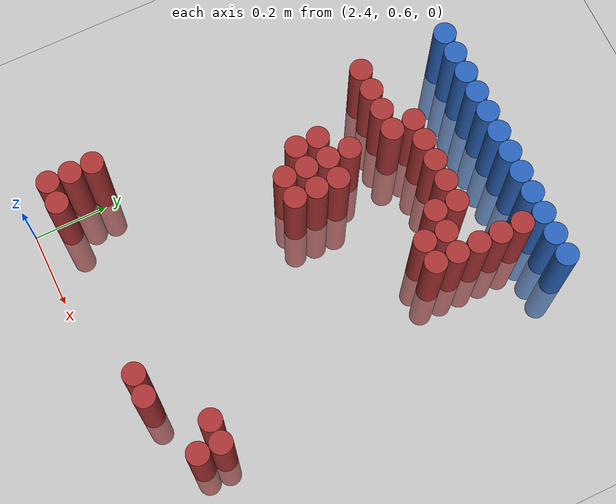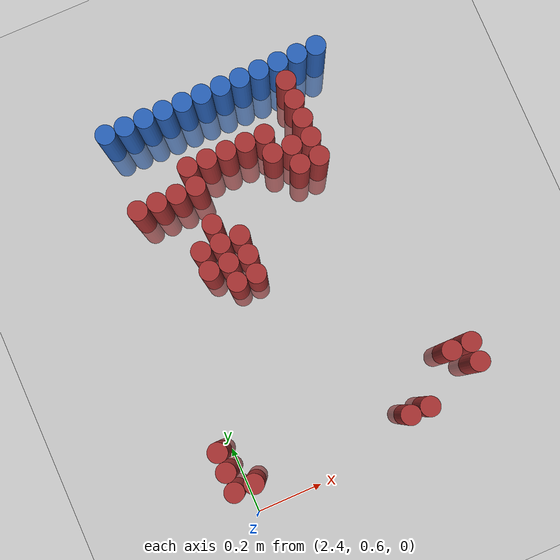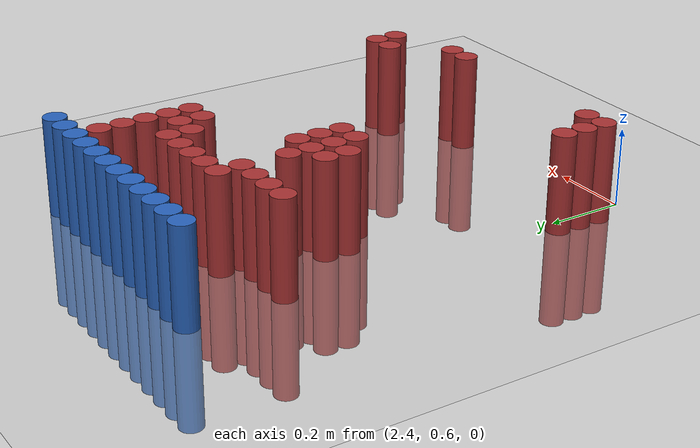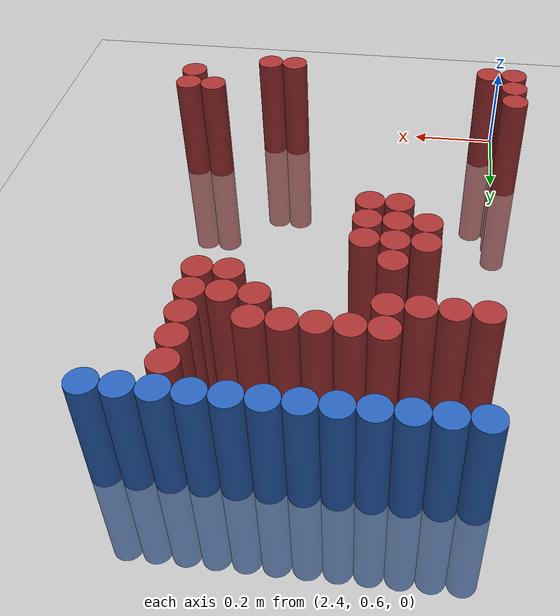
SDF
<sdf version="1.6">
 <world name="default">
  <model name="ground_plane">
   <static>1</static>
   <link name="link">
    <collision name="collision">
     <geometry><plane><normal>0 0 1</normal><size>100 100</size></plane></geometry>
     <surface><friction><ode><mu>100</mu><mu2>50</mu2></ode></friction></surface>
    </collision>
    <visual name="visual">
     <cast_shadows>0</cast_shadows>
     <geometry><plane><normal>0 0 1</normal><size>100 100</size></plane></geometry>
     <material>
      <script><uri>file://media/materials/scripts/gazebo.material</uri><name>Gazebo/Grey</name></script>
     </material>
    </visual>
   </link>
  </model>
  <model name="unit_cylinder_101">
   <static>1</static>
   <pose>2.430000 1.770000 0.000000 0.000000 0.000000 0.000000</pose>
   <link name="link">
    <inertial>
     <mass>1</mass>
     <inertia><ixx>0.145833</ixx><ixy>0</ixy><ixz>0</ixz><iyy>0.145833</iyy><iyz>0</iyz><izz>0.125</izz></inertia>
    </inertial>
    <collision name="collision">
     <geometry><cylinder><radius>0.030000</radius><length>0.5</length></cylinder></geometry>
    </collision>
    <visual name="visual">
     <geometry><cylinder><radius>0.030000</radius><length>0.5</length></cylinder></geometry>
     <material>
      <ambient>0.152000 0.379000 0.720000 1</ambient>
      <diffuse>0.152000 0.379000 0.720000 1</diffuse>
     </material>
     <material>
      <script><name>Gazebo/Grey</name><uri>file://media/materials/scripts/gazebo.material</uri></script>
     </material>
    </visual>
   </link>
  </model>
  <model name="unit_cylinder_102">
   <static>1</static>
   <pose>2.490000 1.770000 0.000000 0.000000 0.000000 0.000000</pose>
   <link name="link">
    <inertial>
     <mass>1</mass>
     <inertia><ixx>0.145833</ixx><ixy>0</ixy><ixz>0</ixz><iyy>0.145833</iyy><iyz>0</iyz><izz>0.125</izz></inertia>
    </inertial>
    <collision name="collision">
     <geometry><cylinder><radius>0.030000</radius><length>0.5</length></cylinder></geometry>
    </collision>
    <visual name="visual">
     <geometry><cylinder><radius>0.030000</radius><length>0.5</length></cylinder></geometry>
     <material>
      <ambient>0.152000 0.379000 0.720000 1</ambient>
      <diffuse>0.152000 0.379000 0.720000 1</diffuse>
     </material>
     <material>
      <script><name>Gazebo/Grey</name><uri>file://media/materials/scripts/gazebo.material</uri></script>
     </material>
    </visual>
   </link>
  </model>
  <model name="unit_cylinder_103">
   <static>1</static>
   <pose>2.550000 1.770000 0.000000 0.000000 0.000000 0.000000</pose>
   <link name="link">
    <inertial>
     <mass>1</mass>
     <inertia><ixx>0.145833</ixx><ixy>0</ixy><ixz>0</ixz><iyy>0.145833</iyy><iyz>0</iyz><izz>0.125</izz></inertia>
    </inertial>
    <collision name="collision">
     <geometry><cylinder><radius>0.030000</radius><length>0.5</length></cylinder></geometry>
    </collision>
    <visual name="visual">
     <geometry><cylinder><radius>0.030000</radius><length>0.5</length></cylinder></geometry>
     <material>
      <ambient>0.152000 0.379000 0.720000 1</ambient>
      <diffuse>0.152000 0.379000 0.720000 1</diffuse>
     </material>
     <material>
      <script><name>Gazebo/Grey</name><uri>file://media/materials/scripts/gazebo.material</uri></script>
     </material>
    </visual>
   </link>
  </model>
  <model name="unit_cylinder_104">
   <static>1</static>
   <pose>2.610000 1.770000 0.000000 0.000000 0.000000 0.000000</pose>
   <link name="link">
    <inertial>
     <mass>1</mass>
     <inertia><ixx>0.145833</ixx><ixy>0</ixy><ixz>0</ixz><iyy>0.145833</iyy><iyz>0</iyz><izz>0.125</izz></inertia>
    </inertial>
    <collision name="collision">
     <geometry><cylinder><radius>0.030000</radius><length>0.5</length></cylinder></geometry>
    </collision>
    <visual name="visual">
     <geometry><cylinder><radius>0.030000</radius><length>0.5</length></cylinder></geometry>
     <material>
      <ambient>0.152000 0.379000 0.720000 1</ambient>
      <diffuse>0.152000 0.379000 0.720000 1</diffuse>
     </material>
     <material>
      <script><name>Gazebo/Grey</name><uri>file://media/materials/scripts/gazebo.material</uri></script>
     </material>
    </visual>
   </link>
  </model>
  <model name="unit_cylinder_105">
   <static>1</static>
   <pose>2.670000 1.770000 0.000000 0.000000 0.000000 0.000000</pose>
   <link name="link">
    <inertial>
     <mass>1</mass>
     <inertia><ixx>0.145833</ixx><ixy>0</ixy><ixz>0</ixz><iyy>0.145833</iyy><iyz>0</iyz><izz>0.125</izz></inertia>
    </inertial>
    <collision name="collision">
     <geometry><cylinder><radius>0.030000</radius><length>0.5</length></cylinder></geometry>
    </collision>
    <visual name="visual">
     <geometry><cylinder><radius>0.030000</radius><length>0.5</length></cylinder></geometry>
     <material>
      <ambient>0.152000 0.379000 0.720000 1</ambient>
      <diffuse>0.152000 0.379000 0.720000 1</diffuse>
     </material>
     <material>
      <script><name>Gazebo/Grey</name><uri>file://media/materials/scripts/gazebo.material</uri></script>
     </material>
    </visual>
   </link>
  </model>
  <model name="unit_cylinder_106">
   <static>1</static>
   <pose>2.730000 1.770000 0.000000 0.000000 0.000000 0.000000</pose>
   <link name="link">
    <inertial>
     <mass>1</mass>
     <inertia><ixx>0.145833</ixx><ixy>0</ixy><ixz>0</ixz><iyy>0.145833</iyy><iyz>0</iyz><izz>0.125</izz></inertia>
    </inertial>
    <collision name="collision">
     <geometry><cylinder><radius>0.030000</radius><length>0.5</length></cylinder></geometry>
    </collision>
    <visual name="visual">
     <geometry><cylinder><radius>0.030000</radius><length>0.5</length></cylinder></geometry>
     <material>
      <ambient>0.152000 0.379000 0.720000 1</ambient>
      <diffuse>0.152000 0.379000 0.720000 1</diffuse>
     </material>
     <material>
      <script><name>Gazebo/Grey</name><uri>file://media/materials/scripts/gazebo.material</uri></script>
     </material>
    </visual>
   </link>
  </model>
  <model name="unit_cylinder_107">
   <static>1</static>
   <pose>2.790000 1.770000 0.000000 0.000000 0.000000 0.000000</pose>
   <link name="link">
    <inertial>
     <mass>1</mass>
     <inertia><ixx>0.145833</ixx><ixy>0</ixy><ixz>0</ixz><iyy>0.145833</iyy><iyz>0</iyz><izz>0.125</izz></inertia>
    </inertial>
    <collision name="collision">
     <geometry><cylinder><radius>0.030000</radius><length>0.5</length></cylinder></geometry>
    </collision>
    <visual name="visual">
     <geometry><cylinder><radius>0.030000</radius><length>0.5</length></cylinder></geometry>
     <material>
      <ambient>0.152000 0.379000 0.720000 1</ambient>
      <diffuse>0.152000 0.379000 0.720000 1</diffuse>
     </material>
     <material>
      <script><name>Gazebo/Grey</name><uri>file://media/materials/scripts/gazebo.material</uri></script>
     </material>
    </visual>
   </link>
  </model>
  <model name="unit_cylinder_108">
   <static>1</static>
   <pose>2.850000 1.770000 0.000000 0.000000 0.000000 0.000000</pose>
   <link name="link">
    <inertial>
     <mass>1</mass>
     <inertia><ixx>0.145833</ixx><ixy>0</ixy><ixz>0</ixz><iyy>0.145833</iyy><iyz>0</iyz><izz>0.125</izz></inertia>
    </inertial>
    <collision name="collision">
     <geometry><cylinder><radius>0.030000</radius><length>0.5</length></cylinder></geometry>
    </collision>
    <visual name="visual">
     <geometry><cylinder><radius>0.030000</radius><length>0.5</length></cylinder></geometry>
     <material>
      <ambient>0.152000 0.379000 0.720000 1</ambient>
      <diffuse>0.152000 0.379000 0.720000 1</diffuse>
     </material>
     <material>
      <script><name>Gazebo/Grey</name><uri>file://media/materials/scripts/gazebo.material</uri></script>
     </material>
    </visual>
   </link>
  </model>
  <model name="unit_cylinder_109">
   <static>1</static>
   <pose>2.910000 1.770000 0.000000 0.000000 0.000000 0.000000</pose>
   <link name="link">
    <inertial>
     <mass>1</mass>
     <inertia><ixx>0.145833</ixx><ixy>0</ixy><ixz>0</ixz><iyy>0.145833</iyy><iyz>0</iyz><izz>0.125</izz></inertia>
    </inertial>
    <collision name="collision">
     <geometry><cylinder><radius>0.030000</radius><length>0.5</length></cylinder></geometry>
    </collision>
    <visual name="visual">
     <geometry><cylinder><radius>0.030000</radius><length>0.5</length></cylinder></geometry>
     <material>
      <ambient>0.152000 0.379000 0.720000 1</ambient>
      <diffuse>0.152000 0.379000 0.720000 1</diffuse>
     </material>
     <material>
      <script><name>Gazebo/Grey</name><uri>file://media/materials/scripts/gazebo.material</uri></script>
     </material>
    </visual>
   </link>
  </model>
  <model name="unit_cylinder_110">
   <static>1</static>
   <pose>2.970000 1.770000 0.000000 0.000000 0.000000 0.000000</pose>
   <link name="link">
    <inertial>
     <mass>1</mass>
     <inertia><ixx>0.145833</ixx><ixy>0</ixy><ixz>0</ixz><iyy>0.145833</iyy><iyz>0</iyz><izz>0.125</izz></inertia>
    </inertial>
    <collision name="collision">
     <geometry><cylinder><radius>0.030000</radius><length>0.5</length></cylinder></geometry>
    </collision>
    <visual name="visual">
     <geometry><cylinder><radius>0.030000</radius><length>0.5</length></cylinder></geometry>
     <material>
      <ambient>0.152000 0.379000 0.720000 1</ambient>
      <diffuse>0.152000 0.379000 0.720000 1</diffuse>
     </material>
     <material>
      <script><name>Gazebo/Grey</name><uri>file://media/materials/scripts/gazebo.material</uri></script>
     </material>
    </visual>
   </link>
  </model>
  <model name="unit_cylinder_111">
   <static>1</static>
   <pose>3.030000 1.770000 0.000000 0.000000 0.000000 0.000000</pose>
   <link name="link">
    <inertial>
     <mass>1</mass>
     <inertia><ixx>0.145833</ixx><ixy>0</ixy><ixz>0</ixz><iyy>0.145833</iyy><iyz>0</iyz><izz>0.125</izz></inertia>
    </inertial>
    <collision name="collision">
     <geometry><cylinder><radius>0.030000</radius><length>0.5</length></cylinder></geometry>
    </collision>
    <visual name="visual">
     <geometry><cylinder><radius>0.030000</radius><length>0.5</length></cylinder></geometry>
     <material>
      <ambient>0.152000 0.379000 0.720000 1</ambient>
      <diffuse>0.152000 0.379000 0.720000 1</diffuse>
     </material>
     <material>
      <script><name>Gazebo/Grey</name><uri>file://media/materials/scripts/gazebo.material</uri></script>
     </material>
    </visual>
   </link>
  </model>
  <model name="unit_cylinder_112">
   <static>1</static>
   <pose>3.090000 1.770000 0.000000 0.000000 0.000000 0.000000</pose>
   <link name="link">
    <inertial>
     <mass>1</mass>
     <inertia><ixx>0.145833</ixx><ixy>0</ixy><ixz>0</ixz><iyy>0.145833</iyy><iyz>0</iyz><izz>0.125</izz></inertia>
    </inertial>
    <collision name="collision">
     <geometry><cylinder><radius>0.030000</radius><length>0.5</length></cylinder></geometry>
    </collision>
    <visual name="visual">
     <geometry><cylinder><radius>0.030000</radius><length>0.5</length></cylinder></geometry>
     <material>
      <ambient>0.152000 0.379000 0.720000 1</ambient>
      <diffuse>0.152000 0.379000 0.720000 1</diffuse>
     </material>
     <material>
      <script><name>Gazebo/Grey</name><uri>file://media/materials/scripts/gazebo.material</uri></script>
     </material>
    </visual>
   </link>
  </model>
  <model name="unit_cylinder_126">
   <static>1</static>
   <pose>2.970000 1.710000 0.000000 0.000000 0.000000 0.000000</pose>
   <link name="link">
    <inertial>
     <mass>1</mass>
     <inertia><ixx>0.145833</ixx><ixy>0</ixy><ixz>0</ixz><iyy>0.145833</iyy><iyz>0</iyz><izz>0.125</izz></inertia>
    </inertial>
    <collision name="collision">
     <geometry><cylinder><radius>0.030000</radius><length>0.5</length></cylinder></geometry>
    </collision>
    <visual name="visual">
     <geometry><cylinder><radius>0.030000</radius><length>0.5</length></cylinder></geometry>
     <material>
      <ambient>0.648000 0.192000 0.192000 1</ambient>
      <diffuse>0.648000 0.192000 0.192000 1</diffuse>
     </material>
     <material>
      <script><name>Gazebo/Grey</name><uri>file://media/materials/scripts/gazebo.material</uri></script>
     </material>
    </visual>
   </link>
  </model>
  <model name="unit_cylinder_138">
   <static>1</static>
   <pose>2.970000 1.650000 0.000000 0.000000 0.000000 0.000000</pose>
   <link name="link">
    <inertial>
     <mass>1</mass>
     <inertia><ixx>0.145833</ixx><ixy>0</ixy><ixz>0</ixz><iyy>0.145833</iyy><iyz>0</iyz><izz>0.125</izz></inertia>
    </inertial>
    <collision name="collision">
     <geometry><cylinder><radius>0.030000</radius><length>0.5</length></cylinder></geometry>
    </collision>
    <visual name="visual">
     <geometry><cylinder><radius>0.030000</radius><length>0.5</length></cylinder></geometry>
     <material>
      <ambient>0.648000 0.192000 0.192000 1</ambient>
      <diffuse>0.648000 0.192000 0.192000 1</diffuse>
     </material>
     <material>
      <script><name>Gazebo/Grey</name><uri>file://media/materials/scripts/gazebo.material</uri></script>
     </material>
    </visual>
   </link>
  </model>
  <model name="unit_cylinder_149">
   <static>1</static>
   <pose>2.610000 1.590000 0.000000 0.000000 0.000000 0.000000</pose>
   <link name="link">
    <inertial>
     <mass>1</mass>
     <inertia><ixx>0.145833</ixx><ixy>0</ixy><ixz>0</ixz><iyy>0.145833</iyy><iyz>0</iyz><izz>0.125</izz></inertia>
    </inertial>
    <collision name="collision">
     <geometry><cylinder><radius>0.030000</radius><length>0.5</length></cylinder></geometry>
    </collision>
    <visual name="visual">
     <geometry><cylinder><radius>0.030000</radius><length>0.5</length></cylinder></geometry>
     <material>
      <ambient>0.648000 0.192000 0.192000 1</ambient>
      <diffuse>0.648000 0.192000 0.192000 1</diffuse>
     </material>
     <material>
      <script><name>Gazebo/Grey</name><uri>file://media/materials/scripts/gazebo.material</uri></script>
     </material>
    </visual>
   </link>
  </model>
  <model name="unit_cylinder_150">
   <static>1</static>
   <pose>2.670000 1.590000 0.000000 0.000000 0.000000 0.000000</pose>
   <link name="link">
    <inertial>
     <mass>1</mass>
     <inertia><ixx>0.145833</ixx><ixy>0</ixy><ixz>0</ixz><iyy>0.145833</iyy><iyz>0</iyz><izz>0.125</izz></inertia>
    </inertial>
    <collision name="collision">
     <geometry><cylinder><radius>0.030000</radius><length>0.5</length></cylinder></geometry>
    </collision>
    <visual name="visual">
     <geometry><cylinder><radius>0.030000</radius><length>0.5</length></cylinder></geometry>
     <material>
      <ambient>0.648000 0.192000 0.192000 1</ambient>
      <diffuse>0.648000 0.192000 0.192000 1</diffuse>
     </material>
     <material>
      <script><name>Gazebo/Grey</name><uri>file://media/materials/scripts/gazebo.material</uri></script>
     </material>
    </visual>
   </link>
  </model>
  <model name="unit_cylinder_151">
   <static>1</static>
   <pose>2.730000 1.590000 0.000000 0.000000 0.000000 0.000000</pose>
   <link name="link">
    <inertial>
     <mass>1</mass>
     <inertia><ixx>0.145833</ixx><ixy>0</ixy><ixz>0</ixz><iyy>0.145833</iyy><iyz>0</iyz><izz>0.125</izz></inertia>
    </inertial>
    <collision name="collision">
     <geometry><cylinder><radius>0.030000</radius><length>0.5</length></cylinder></geometry>
    </collision>
    <visual name="visual">
     <geometry><cylinder><radius>0.030000</radius><length>0.5</length></cylinder></geometry>
     <material>
      <ambient>0.648000 0.192000 0.192000 1</ambient>
      <diffuse>0.648000 0.192000 0.192000 1</diffuse>
     </material>
     <material>
      <script><name>Gazebo/Grey</name><uri>file://media/materials/scripts/gazebo.material</uri></script>
     </material>
    </visual>
   </link>
  </model>
  <model name="unit_cylinder_152">
   <static>1</static>
   <pose>2.790000 1.590000 0.000000 0.000000 0.000000 0.000000</pose>
   <link name="link">
    <inertial>
     <mass>1</mass>
     <inertia><ixx>0.145833</ixx><ixy>0</ixy><ixz>0</ixz><iyy>0.145833</iyy><iyz>0</iyz><izz>0.125</izz></inertia>
    </inertial>
    <collision name="collision">
     <geometry><cylinder><radius>0.030000</radius><length>0.5</length></cylinder></geometry>
    </collision>
    <visual name="visual">
     <geometry><cylinder><radius>0.030000</radius><length>0.5</length></cylinder></geometry>
     <material>
      <ambient>0.648000 0.192000 0.192000 1</ambient>
      <diffuse>0.648000 0.192000 0.192000 1</diffuse>
     </material>
     <material>
      <script><name>Gazebo/Grey</name><uri>file://media/materials/scripts/gazebo.material</uri></script>
     </material>
    </visual>
   </link>
  </model>
  <model name="unit_cylinder_153">
   <static>1</static>
   <pose>2.850000 1.590000 0.000000 0.000000 0.000000 0.000000</pose>
   <link name="link">
    <inertial>
     <mass>1</mass>
     <inertia><ixx>0.145833</ixx><ixy>0</ixy><ixz>0</ixz><iyy>0.145833</iyy><iyz>0</iyz><izz>0.125</izz></inertia>
    </inertial>
    <collision name="collision">
     <geometry><cylinder><radius>0.030000</radius><length>0.5</length></cylinder></geometry>
    </collision>
    <visual name="visual">
     <geometry><cylinder><radius>0.030000</radius><length>0.5</length></cylinder></geometry>
     <material>
      <ambient>0.648000 0.192000 0.192000 1</ambient>
      <diffuse>0.648000 0.192000 0.192000 1</diffuse>
     </material>
     <material>
      <script><name>Gazebo/Grey</name><uri>file://media/materials/scripts/gazebo.material</uri></script>
     </material>
    </visual>
   </link>
  </model>
  <model name="unit_cylinder_154">
   <static>1</static>
   <pose>2.970000 1.590000 0.000000 0.000000 0.000000 0.000000</pose>
   <link name="link">
    <inertial>
     <mass>1</mass>
     <inertia><ixx>0.145833</ixx><ixy>0</ixy><ixz>0</ixz><iyy>0.145833</iyy><iyz>0</iyz><izz>0.125</izz></inertia>
    </inertial>
    <collision name="collision">
     <geometry><cylinder><radius>0.030000</radius><length>0.5</length></cylinder></geometry>
    </collision>
    <visual name="visual">
     <geometry><cylinder><radius>0.030000</radius><length>0.5</length></cylinder></geometry>
     <material>
      <ambient>0.648000 0.192000 0.192000 1</ambient>
      <diffuse>0.648000 0.192000 0.192000 1</diffuse>
     </material>
     <material>
      <script><name>Gazebo/Grey</name><uri>file://media/materials/scripts/gazebo.material</uri></script>
     </material>
    </visual>
   </link>
  </model>
  <model name="unit_cylinder_161">
   <static>1</static>
   <pose>2.430000 1.530000 0.000000 0.000000 0.000000 0.000000</pose>
   <link name="link">
    <inertial>
     <mass>1</mass>
     <inertia><ixx>0.145833</ixx><ixy>0</ixy><ixz>0</ixz><iyy>0.145833</iyy><iyz>0</iyz><izz>0.125</izz></inertia>
    </inertial>
    <collision name="collision">
     <geometry><cylinder><radius>0.030000</radius><length>0.5</length></cylinder></geometry>
    </collision>
    <visual name="visual">
     <geometry><cylinder><radius>0.030000</radius><length>0.5</length></cylinder></geometry>
     <material>
      <ambient>0.648000 0.192000 0.192000 1</ambient>
      <diffuse>0.648000 0.192000 0.192000 1</diffuse>
     </material>
     <material>
      <script><name>Gazebo/Grey</name><uri>file://media/materials/scripts/gazebo.material</uri></script>
     </material>
    </visual>
   </link>
  </model>
  <model name="unit_cylinder_162">
   <static>1</static>
   <pose>2.490000 1.530000 0.000000 0.000000 0.000000 0.000000</pose>
   <link name="link">
    <inertial>
     <mass>1</mass>
     <inertia><ixx>0.145833</ixx><ixy>0</ixy><ixz>0</ixz><iyy>0.145833</iyy><iyz>0</iyz><izz>0.125</izz></inertia>
    </inertial>
    <collision name="collision">
     <geometry><cylinder><radius>0.030000</radius><length>0.5</length></cylinder></geometry>
    </collision>
    <visual name="visual">
     <geometry><cylinder><radius>0.030000</radius><length>0.5</length></cylinder></geometry>
     <material>
      <ambient>0.648000 0.192000 0.192000 1</ambient>
      <diffuse>0.648000 0.192000 0.192000 1</diffuse>
     </material>
     <material>
      <script><name>Gazebo/Grey</name><uri>file://media/materials/scripts/gazebo.material</uri></script>
     </material>
    </visual>
   </link>
  </model>
  <model name="unit_cylinder_163">
   <static>1</static>
   <pose>2.550000 1.530000 0.000000 0.000000 0.000000 0.000000</pose>
   <link name="link">
    <inertial>
     <mass>1</mass>
     <inertia><ixx>0.145833</ixx><ixy>0</ixy><ixz>0</ixz><iyy>0.145833</iyy><iyz>0</iyz><izz>0.125</izz></inertia>
    </inertial>
    <collision name="collision">
     <geometry><cylinder><radius>0.030000</radius><length>0.5</length></cylinder></geometry>
    </collision>
    <visual name="visual">
     <geometry><cylinder><radius>0.030000</radius><length>0.5</length></cylinder></geometry>
     <material>
      <ambient>0.648000 0.192000 0.192000 1</ambient>
      <diffuse>0.648000 0.192000 0.192000 1</diffuse>
     </material>
     <material>
      <script><name>Gazebo/Grey</name><uri>file://media/materials/scripts/gazebo.material</uri></script>
     </material>
    </visual>
   </link>
  </model>
  <model name="unit_cylinder_164">
   <static>1</static>
   <pose>2.610000 1.530000 0.000000 0.000000 0.000000 0.000000</pose>
   <link name="link">
    <inertial>
     <mass>1</mass>
     <inertia><ixx>0.145833</ixx><ixy>0</ixy><ixz>0</ixz><iyy>0.145833</iyy><iyz>0</iyz><izz>0.125</izz></inertia>
    </inertial>
    <collision name="collision">
     <geometry><cylinder><radius>0.030000</radius><length>0.5</length></cylinder></geometry>
    </collision>
    <visual name="visual">
     <geometry><cylinder><radius>0.030000</radius><length>0.5</length></cylinder></geometry>
     <material>
      <ambient>0.648000 0.192000 0.192000 1</ambient>
      <diffuse>0.648000 0.192000 0.192000 1</diffuse>
     </material>
     <material>
      <script><name>Gazebo/Grey</name><uri>file://media/materials/scripts/gazebo.material</uri></script>
     </material>
    </visual>
   </link>
  </model>
  <model name="unit_cylinder_165">
   <static>1</static>
   <pose>2.850000 1.530000 0.000000 0.000000 0.000000 0.000000</pose>
   <link name="link">
    <inertial>
     <mass>1</mass>
     <inertia><ixx>0.145833</ixx><ixy>0</ixy><ixz>0</ixz><iyy>0.145833</iyy><iyz>0</iyz><izz>0.125</izz></inertia>
    </inertial>
    <collision name="collision">
     <geometry><cylinder><radius>0.030000</radius><length>0.5</length></cylinder></geometry>
    </collision>
    <visual name="visual">
     <geometry><cylinder><radius>0.030000</radius><length>0.5</length></cylinder></geometry>
     <material>
      <ambient>0.648000 0.192000 0.192000 1</ambient>
      <diffuse>0.648000 0.192000 0.192000 1</diffuse>
     </material>
     <material>
      <script><name>Gazebo/Grey</name><uri>file://media/materials/scripts/gazebo.material</uri></script>
     </material>
    </visual>
   </link>
  </model>
  <model name="unit_cylinder_166">
   <static>1</static>
   <pose>2.910000 1.530000 0.000000 0.000000 0.000000 0.000000</pose>
   <link name="link">
    <inertial>
     <mass>1</mass>
     <inertia><ixx>0.145833</ixx><ixy>0</ixy><ixz>0</ixz><iyy>0.145833</iyy><iyz>0</iyz><izz>0.125</izz></inertia>
    </inertial>
    <collision name="collision">
     <geometry><cylinder><radius>0.030000</radius><length>0.5</length></cylinder></geometry>
    </collision>
    <visual name="visual">
     <geometry><cylinder><radius>0.030000</radius><length>0.5</length></cylinder></geometry>
     <material>
      <ambient>0.648000 0.192000 0.192000 1</ambient>
      <diffuse>0.648000 0.192000 0.192000 1</diffuse>
     </material>
     <material>
      <script><name>Gazebo/Grey</name><uri>file://media/materials/scripts/gazebo.material</uri></script>
     </material>
    </visual>
   </link>
  </model>
  <model name="unit_cylinder_167">
   <static>1</static>
   <pose>2.970000 1.530000 0.000000 0.000000 0.000000 0.000000</pose>
   <link name="link">
    <inertial>
     <mass>1</mass>
     <inertia><ixx>0.145833</ixx><ixy>0</ixy><ixz>0</ixz><iyy>0.145833</iyy><iyz>0</iyz><izz>0.125</izz></inertia>
    </inertial>
    <collision name="collision">
     <geometry><cylinder><radius>0.030000</radius><length>0.5</length></cylinder></geometry>
    </collision>
    <visual name="visual">
     <geometry><cylinder><radius>0.030000</radius><length>0.5</length></cylinder></geometry>
     <material>
      <ambient>0.648000 0.192000 0.192000 1</ambient>
      <diffuse>0.648000 0.192000 0.192000 1</diffuse>
     </material>
     <material>
      <script><name>Gazebo/Grey</name><uri>file://media/materials/scripts/gazebo.material</uri></script>
     </material>
    </visual>
   </link>
  </model>
  <model name="unit_cylinder_171">
   <static>1</static>
   <pose>2.910000 1.470000 0.000000 0.000000 0.000000 0.000000</pose>
   <link name="link">
    <inertial>
     <mass>1</mass>
     <inertia><ixx>0.145833</ixx><ixy>0</ixy><ixz>0</ixz><iyy>0.145833</iyy><iyz>0</iyz><izz>0.125</izz></inertia>
    </inertial>
    <collision name="collision">
     <geometry><cylinder><radius>0.030000</radius><length>0.5</length></cylinder></geometry>
    </collision>
    <visual name="visual">
     <geometry><cylinder><radius>0.030000</radius><length>0.5</length></cylinder></geometry>
     <material>
      <ambient>0.648000 0.192000 0.192000 1</ambient>
      <diffuse>0.648000 0.192000 0.192000 1</diffuse>
     </material>
     <material>
      <script><name>Gazebo/Grey</name><uri>file://media/materials/scripts/gazebo.material</uri></script>
     </material>
    </visual>
   </link>
  </model>
  <model name="unit_cylinder_172">
   <static>1</static>
   <pose>2.970000 1.470000 0.000000 0.000000 0.000000 0.000000</pose>
   <link name="link">
    <inertial>
     <mass>1</mass>
     <inertia><ixx>0.145833</ixx><ixy>0</ixy><ixz>0</ixz><iyy>0.145833</iyy><iyz>0</iyz><izz>0.125</izz></inertia>
    </inertial>
    <collision name="collision">
     <geometry><cylinder><radius>0.030000</radius><length>0.5</length></cylinder></geometry>
    </collision>
    <visual name="visual">
     <geometry><cylinder><radius>0.030000</radius><length>0.5</length></cylinder></geometry>
     <material>
      <ambient>0.648000 0.192000 0.192000 1</ambient>
      <diffuse>0.648000 0.192000 0.192000 1</diffuse>
     </material>
     <material>
      <script><name>Gazebo/Grey</name><uri>file://media/materials/scripts/gazebo.material</uri></script>
     </material>
    </visual>
   </link>
  </model>
  <model name="unit_cylinder_173">
   <static>1</static>
   <pose>2.610000 1.410000 0.000000 0.000000 0.000000 0.000000</pose>
   <link name="link">
    <inertial>
     <mass>1</mass>
     <inertia><ixx>0.145833</ixx><ixy>0</ixy><ixz>0</ixz><iyy>0.145833</iyy><iyz>0</iyz><izz>0.125</izz></inertia>
    </inertial>
    <collision name="collision">
     <geometry><cylinder><radius>0.030000</radius><length>0.5</length></cylinder></geometry>
    </collision>
    <visual name="visual">
     <geometry><cylinder><radius>0.030000</radius><length>0.5</length></cylinder></geometry>
     <material>
      <ambient>0.648000 0.192000 0.192000 1</ambient>
      <diffuse>0.648000 0.192000 0.192000 1</diffuse>
     </material>
     <material>
      <script><name>Gazebo/Grey</name><uri>file://media/materials/scripts/gazebo.material</uri></script>
     </material>
    </visual>
   </link>
  </model>
  <model name="unit_cylinder_177">
   <static>1</static>
   <pose>2.550000 1.350000 0.000000 0.000000 0.000000 0.000000</pose>
   <link name="link">
    <inertial>
     <mass>1</mass>
     <inertia><ixx>0.145833</ixx><ixy>0</ixy><ixz>0</ixz><iyy>0.145833</iyy><iyz>0</iyz><izz>0.125</izz></inertia>
    </inertial>
    <collision name="collision">
     <geometry><cylinder><radius>0.030000</radius><length>0.5</length></cylinder></geometry>
    </collision>
    <visual name="visual">
     <geometry><cylinder><radius>0.030000</radius><length>0.5</length></cylinder></geometry>
     <material>
      <ambient>0.648000 0.192000 0.192000 1</ambient>
      <diffuse>0.648000 0.192000 0.192000 1</diffuse>
     </material>
     <material>
      <script><name>Gazebo/Grey</name><uri>file://media/materials/scripts/gazebo.material</uri></script>
     </material>
    </visual>
   </link>
  </model>
  <model name="unit_cylinder_178">
   <static>1</static>
   <pose>2.610000 1.350000 0.000000 0.000000 0.000000 0.000000</pose>
   <link name="link">
    <inertial>
     <mass>1</mass>
     <inertia><ixx>0.145833</ixx><ixy>0</ixy><ixz>0</ixz><iyy>0.145833</iyy><iyz>0</iyz><izz>0.125</izz></inertia>
    </inertial>
    <collision name="collision">
     <geometry><cylinder><radius>0.030000</radius><length>0.5</length></cylinder></geometry>
    </collision>
    <visual name="visual">
     <geometry><cylinder><radius>0.030000</radius><length>0.5</length></cylinder></geometry>
     <material>
      <ambient>0.648000 0.192000 0.192000 1</ambient>
      <diffuse>0.648000 0.192000 0.192000 1</diffuse>
     </material>
     <material>
      <script><name>Gazebo/Grey</name><uri>file://media/materials/scripts/gazebo.material</uri></script>
     </material>
    </visual>
   </link>
  </model>
  <model name="unit_cylinder_179">
   <static>1</static>
   <pose>2.670000 1.350000 0.000000 0.000000 0.000000 0.000000</pose>
   <link name="link">
    <inertial>
     <mass>1</mass>
     <inertia><ixx>0.145833</ixx><ixy>0</ixy><ixz>0</ixz><iyy>0.145833</iyy><iyz>0</iyz><izz>0.125</izz></inertia>
    </inertial>
    <collision name="collision">
     <geometry><cylinder><radius>0.030000</radius><length>0.5</length></cylinder></geometry>
    </collision>
    <visual name="visual">
     <geometry><cylinder><radius>0.030000</radius><length>0.5</length></cylinder></geometry>
     <material>
      <ambient>0.648000 0.192000 0.192000 1</ambient>
      <diffuse>0.648000 0.192000 0.192000 1</diffuse>
     </material>
     <material>
      <script><name>Gazebo/Grey</name><uri>file://media/materials/scripts/gazebo.material</uri></script>
     </material>
    </visual>
   </link>
  </model>
  <model name="unit_cylinder_183">
   <static>1</static>
   <pose>2.550000 1.290000 0.000000 0.000000 0.000000 0.000000</pose>
   <link name="link">
    <inertial>
     <mass>1</mass>
     <inertia><ixx>0.145833</ixx><ixy>0</ixy><ixz>0</ixz><iyy>0.145833</iyy><iyz>0</iyz><izz>0.125</izz></inertia>
    </inertial>
    <collision name="collision">
     <geometry><cylinder><radius>0.030000</radius><length>0.5</length></cylinder></geometry>
    </collision>
    <visual name="visual">
     <geometry><cylinder><radius>0.030000</radius><length>0.5</length></cylinder></geometry>
     <material>
      <ambient>0.648000 0.192000 0.192000 1</ambient>
      <diffuse>0.648000 0.192000 0.192000 1</diffuse>
     </material>
     <material>
      <script><name>Gazebo/Grey</name><uri>file://media/materials/scripts/gazebo.material</uri></script>
     </material>
    </visual>
   </link>
  </model>
  <model name="unit_cylinder_184">
   <static>1</static>
   <pose>2.610000 1.290000 0.000000 0.000000 0.000000 0.000000</pose>
   <link name="link">
    <inertial>
     <mass>1</mass>
     <inertia><ixx>0.145833</ixx><ixy>0</ixy><ixz>0</ixz><iyy>0.145833</iyy><iyz>0</iyz><izz>0.125</izz></inertia>
    </inertial>
    <collision name="collision">
     <geometry><cylinder><radius>0.030000</radius><length>0.5</length></cylinder></geometry>
    </collision>
    <visual name="visual">
     <geometry><cylinder><radius>0.030000</radius><length>0.5</length></cylinder></geometry>
     <material>
      <ambient>0.648000 0.192000 0.192000 1</ambient>
      <diffuse>0.648000 0.192000 0.192000 1</diffuse>
     </material>
     <material>
      <script><name>Gazebo/Grey</name><uri>file://media/materials/scripts/gazebo.material</uri></script>
     </material>
    </visual>
   </link>
  </model>
  <model name="unit_cylinder_185">
   <static>1</static>
   <pose>2.670000 1.290000 0.000000 0.000000 0.000000 0.000000</pose>
   <link name="link">
    <inertial>
     <mass>1</mass>
     <inertia><ixx>0.145833</ixx><ixy>0</ixy><ixz>0</ixz><iyy>0.145833</iyy><iyz>0</iyz><izz>0.125</izz></inertia>
    </inertial>
    <collision name="collision">
     <geometry><cylinder><radius>0.030000</radius><length>0.5</length></cylinder></geometry>
    </collision>
    <visual name="visual">
     <geometry><cylinder><radius>0.030000</radius><length>0.5</length></cylinder></geometry>
     <material>
      <ambient>0.648000 0.192000 0.192000 1</ambient>
      <diffuse>0.648000 0.192000 0.192000 1</diffuse>
     </material>
     <material>
      <script><name>Gazebo/Grey</name><uri>file://media/materials/scripts/gazebo.material</uri></script>
     </material>
    </visual>
   </link>
  </model>
  <model name="unit_cylinder_186">
   <static>1</static>
   <pose>2.610000 1.230000 0.000000 0.000000 0.000000 0.000000</pose>
   <link name="link">
    <inertial>
     <mass>1</mass>
     <inertia><ixx>0.145833</ixx><ixy>0</ixy><ixz>0</ixz><iyy>0.145833</iyy><iyz>0</iyz><izz>0.125</izz></inertia>
    </inertial>
    <collision name="collision">
     <geometry><cylinder><radius>0.030000</radius><length>0.5</length></cylinder></geometry>
    </collision>
    <visual name="visual">
     <geometry><cylinder><radius>0.030000</radius><length>0.5</length></cylinder></geometry>
     <material>
      <ambient>0.648000 0.192000 0.192000 1</ambient>
      <diffuse>0.648000 0.192000 0.192000 1</diffuse>
     </material>
     <material>
      <script><name>Gazebo/Grey</name><uri>file://media/materials/scripts/gazebo.material</uri></script>
     </material>
    </visual>
   </link>
  </model>
  <model name="unit_cylinder_187">
   <static>1</static>
   <pose>2.670000 1.230000 0.000000 0.000000 0.000000 0.000000</pose>
   <link name="link">
    <inertial>
     <mass>1</mass>
     <inertia><ixx>0.145833</ixx><ixy>0</ixy><ixz>0</ixz><iyy>0.145833</iyy><iyz>0</iyz><izz>0.125</izz></inertia>
    </inertial>
    <collision name="collision">
     <geometry><cylinder><radius>0.030000</radius><length>0.5</length></cylinder></geometry>
    </collision>
    <visual name="visual">
     <geometry><cylinder><radius>0.030000</radius><length>0.5</length></cylinder></geometry>
     <material>
      <ambient>0.648000 0.192000 0.192000 1</ambient>
      <diffuse>0.648000 0.192000 0.192000 1</diffuse>
     </material>
     <material>
      <script><name>Gazebo/Grey</name><uri>file://media/materials/scripts/gazebo.material</uri></script>
     </material>
    </visual>
   </link>
  </model>
  <model name="unit_cylinder_192">
   <static>1</static>
   <pose>2.370000 0.810000 0.000000 0.000000 0.000000 0.000000</pose>
   <link name="link">
    <inertial>
     <mass>1</mass>
     <inertia><ixx>0.145833</ixx><ixy>0</ixy><ixz>0</ixz><iyy>0.145833</iyy><iyz>0</iyz><izz>0.125</izz></inertia>
    </inertial>
    <collision name="collision">
     <geometry><cylinder><radius>0.030000</radius><length>0.5</length></cylinder></geometry>
    </collision>
    <visual name="visual">
     <geometry><cylinder><radius>0.030000</radius><length>0.5</length></cylinder></geometry>
     <material>
      <ambient>0.648000 0.192000 0.192000 1</ambient>
      <diffuse>0.648000 0.192000 0.192000 1</diffuse>
     </material>
     <material>
      <script><name>Gazebo/Grey</name><uri>file://media/materials/scripts/gazebo.material</uri></script>
     </material>
    </visual>
   </link>
  </model>
  <model name="unit_cylinder_193">
   <static>1</static>
   <pose>3.090000 0.810000 0.000000 0.000000 0.000000 0.000000</pose>
   <link name="link">
    <inertial>
     <mass>1</mass>
     <inertia><ixx>0.145833</ixx><ixy>0</ixy><ixz>0</ixz><iyy>0.145833</iyy><iyz>0</iyz><izz>0.125</izz></inertia>
    </inertial>
    <collision name="collision">
     <geometry><cylinder><radius>0.030000</radius><length>0.5</length></cylinder></geometry>
    </collision>
    <visual name="visual">
     <geometry><cylinder><radius>0.030000</radius><length>0.5</length></cylinder></geometry>
     <material>
      <ambient>0.648000 0.192000 0.192000 1</ambient>
      <diffuse>0.648000 0.192000 0.192000 1</diffuse>
     </material>
     <material>
      <script><name>Gazebo/Grey</name><uri>file://media/materials/scripts/gazebo.material</uri></script>
     </material>
    </visual>
   </link>
  </model>
  <model name="unit_cylinder_194">
   <static>1</static>
   <pose>3.150000 0.810000 0.000000 0.000000 0.000000 0.000000</pose>
   <link name="link">
    <inertial>
     <mass>1</mass>
     <inertia><ixx>0.145833</ixx><ixy>0</ixy><ixz>0</ixz><iyy>0.145833</iyy><iyz>0</iyz><izz>0.125</izz></inertia>
    </inertial>
    <collision name="collision">
     <geometry><cylinder><radius>0.030000</radius><length>0.5</length></cylinder></geometry>
    </collision>
    <visual name="visual">
     <geometry><cylinder><radius>0.030000</radius><length>0.5</length></cylinder></geometry>
     <material>
      <ambient>0.648000 0.192000 0.192000 1</ambient>
      <diffuse>0.648000 0.192000 0.192000 1</diffuse>
     </material>
     <material>
      <script><name>Gazebo/Grey</name><uri>file://media/materials/scripts/gazebo.material</uri></script>
     </material>
    </visual>
   </link>
  </model>
  <model name="unit_cylinder_199">
   <static>1</static>
   <pose>2.370000 0.750000 0.000000 0.000000 0.000000 0.000000</pose>
   <link name="link">
    <inertial>
     <mass>1</mass>
     <inertia><ixx>0.145833</ixx><ixy>0</ixy><ixz>0</ixz><iyy>0.145833</iyy><iyz>0</iyz><izz>0.125</izz></inertia>
    </inertial>
    <collision name="collision">
     <geometry><cylinder><radius>0.030000</radius><length>0.5</length></cylinder></geometry>
    </collision>
    <visual name="visual">
     <geometry><cylinder><radius>0.030000</radius><length>0.5</length></cylinder></geometry>
     <material>
      <ambient>0.648000 0.192000 0.192000 1</ambient>
      <diffuse>0.648000 0.192000 0.192000 1</diffuse>
     </material>
     <material>
      <script><name>Gazebo/Grey</name><uri>file://media/materials/scripts/gazebo.material</uri></script>
     </material>
    </visual>
   </link>
  </model>
  <model name="unit_cylinder_200">
   <static>1</static>
   <pose>3.150000 0.750000 0.000000 0.000000 0.000000 0.000000</pose>
   <link name="link">
    <inertial>
     <mass>1</mass>
     <inertia><ixx>0.145833</ixx><ixy>0</ixy><ixz>0</ixz><iyy>0.145833</iyy><iyz>0</iyz><izz>0.125</izz></inertia>
    </inertial>
    <collision name="collision">
     <geometry><cylinder><radius>0.030000</radius><length>0.5</length></cylinder></geometry>
    </collision>
    <visual name="visual">
     <geometry><cylinder><radius>0.030000</radius><length>0.5</length></cylinder></geometry>
     <material>
      <ambient>0.648000 0.192000 0.192000 1</ambient>
      <diffuse>0.648000 0.192000 0.192000 1</diffuse>
     </material>
     <material>
      <script><name>Gazebo/Grey</name><uri>file://media/materials/scripts/gazebo.material</uri></script>
     </material>
    </visual>
   </link>
  </model>
  <model name="unit_cylinder_204">
   <static>1</static>
   <pose>2.370000 0.690000 0.000000 0.000000 0.000000 0.000000</pose>
   <link name="link">
    <inertial>
     <mass>1</mass>
     <inertia><ixx>0.145833</ixx><ixy>0</ixy><ixz>0</ixz><iyy>0.145833</iyy><iyz>0</iyz><izz>0.125</izz></inertia>
    </inertial>
    <collision name="collision">
     <geometry><cylinder><radius>0.030000</radius><length>0.5</length></cylinder></geometry>
    </collision>
    <visual name="visual">
     <geometry><cylinder><radius>0.030000</radius><length>0.5</length></cylinder></geometry>
     <material>
      <ambient>0.648000 0.192000 0.192000 1</ambient>
      <diffuse>0.648000 0.192000 0.192000 1</diffuse>
     </material>
     <material>
      <script><name>Gazebo/Grey</name><uri>file://media/materials/scripts/gazebo.material</uri></script>
     </material>
    </visual>
   </link>
  </model>
  <model name="unit_cylinder_205">
   <static>1</static>
   <pose>2.430000 0.690000 0.000000 0.000000 0.000000 0.000000</pose>
   <link name="link">
    <inertial>
     <mass>1</mass>
     <inertia><ixx>0.145833</ixx><ixy>0</ixy><ixz>0</ixz><iyy>0.145833</iyy><iyz>0</iyz><izz>0.125</izz></inertia>
    </inertial>
    <collision name="collision">
     <geometry><cylinder><radius>0.030000</radius><length>0.5</length></cylinder></geometry>
    </collision>
    <visual name="visual">
     <geometry><cylinder><radius>0.030000</radius><length>0.5</length></cylinder></geometry>
     <material>
      <ambient>0.648000 0.192000 0.192000 1</ambient>
      <diffuse>0.648000 0.192000 0.192000 1</diffuse>
     </material>
     <material>
      <script><name>Gazebo/Grey</name><uri>file://media/materials/scripts/gazebo.material</uri></script>
     </material>
    </visual>
   </link>
  </model>
  <model name="unit_cylinder_206">
   <static>1</static>
   <pose>2.910000 0.690000 0.000000 0.000000 0.000000 0.000000</pose>
   <link name="link">
    <inertial>
     <mass>1</mass>
     <inertia><ixx>0.145833</ixx><ixy>0</ixy><ixz>0</ixz><iyy>0.145833</iyy><iyz>0</iyz><izz>0.125</izz></inertia>
    </inertial>
    <collision name="collision">
     <geometry><cylinder><radius>0.030000</radius><length>0.5</length></cylinder></geometry>
    </collision>
    <visual name="visual">
     <geometry><cylinder><radius>0.030000</radius><length>0.5</length></cylinder></geometry>
     <material>
      <ambient>0.648000 0.192000 0.192000 1</ambient>
      <diffuse>0.648000 0.192000 0.192000 1</diffuse>
     </material>
     <material>
      <script><name>Gazebo/Grey</name><uri>file://media/materials/scripts/gazebo.material</uri></script>
     </material>
    </visual>
   </link>
  </model>
  <model name="unit_cylinder_207">
   <static>1</static>
   <pose>2.970000 0.690000 0.000000 0.000000 0.000000 0.000000</pose>
   <link name="link">
    <inertial>
     <mass>1</mass>
     <inertia><ixx>0.145833</ixx><ixy>0</ixy><ixz>0</ixz><iyy>0.145833</iyy><iyz>0</iyz><izz>0.125</izz></inertia>
    </inertial>
    <collision name="collision">
     <geometry><cylinder><radius>0.030000</radius><length>0.5</length></cylinder></geometry>
    </collision>
    <visual name="visual">
     <geometry><cylinder><radius>0.030000</radius><length>0.5</length></cylinder></geometry>
     <material>
      <ambient>0.648000 0.192000 0.192000 1</ambient>
      <diffuse>0.648000 0.192000 0.192000 1</diffuse>
     </material>
     <material>
      <script><name>Gazebo/Grey</name><uri>file://media/materials/scripts/gazebo.material</uri></script>
     </material>
    </visual>
   </link>
  </model>
 </world>
</sdf>
